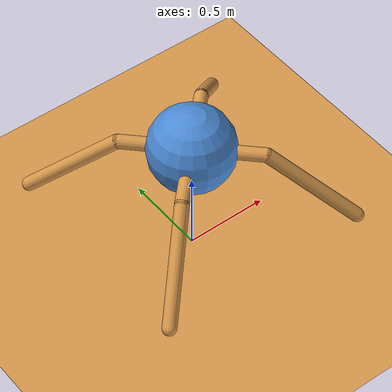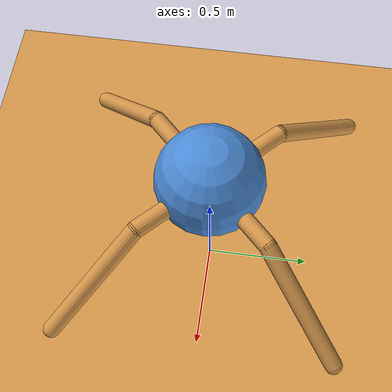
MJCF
<!-- MuJoCo Lab model, written for this site (stella-nova/pages/mujoco-lab). -->
<!-- A four-legged walker of the "ant" kind: a ball body, a hip yaw and a
     knee pitch on each leg, and eight motors. -->
<mujoco model="quadruped">
  <option timestep="0.005" integrator="implicitfast"/>
  <visual><global azimuth="120" elevation="-25"/></visual>
  <default>
    <joint limited="true" damping="1" armature=".01"/>
    <geom type="capsule" size=".04" friction="1 .5 .5" density="5" rgba=".85 .6 .3 1"/>
    <motor ctrlrange="-1 1" gear="15"/>
  </default>
  <asset>
    <texture name="grid" type="2d" builtin="checker" rgb1=".18 .2 .24" rgb2=".24 .27 .31" width="64" height="64"/>
    <material name="grid" texture="grid" texrepeat="10 10" texuniform="true"/>
  </asset>
  <worldbody>
    <light pos="0 0 4" dir="0 0 -1" directional="true"/>
    <geom name="floor" type="plane" size="10 10 .1" material="grid" condim="3"/>
    <body name="torso" pos="0 0 .75">
      <freejoint/>
      <geom name="torso" type="sphere" size=".25" rgba=".3 .55 .85 1"/>
      <body name="leg 1" euler="0 0 45">
        <joint name="hip 1" type="hinge" axis="0 0 1" range="-30 30"/>
        <geom fromto="0 0 0 .4 0 0"/>
        <body pos=".4 0 0"><joint name="knee 1" type="hinge" axis="0 1 0" range="-5 60"/><geom fromto="0 0 0 .5 0 -.4"/></body>
      </body>
      <body name="leg 2" euler="0 0 135">
        <joint name="hip 2" type="hinge" axis="0 0 1" range="-30 30"/>
        <geom fromto="0 0 0 .4 0 0"/>
        <body pos=".4 0 0"><joint name="knee 2" type="hinge" axis="0 1 0" range="-5 60"/><geom fromto="0 0 0 .5 0 -.4"/></body>
      </body>
      <body name="leg 3" euler="0 0 225">
        <joint name="hip 3" type="hinge" axis="0 0 1" range="-30 30"/>
        <geom fromto="0 0 0 .4 0 0"/>
        <body pos=".4 0 0"><joint name="knee 3" type="hinge" axis="0 1 0" range="-5 60"/><geom fromto="0 0 0 .5 0 -.4"/></body>
      </body>
      <body name="leg 4" euler="0 0 315">
        <joint name="hip 4" type="hinge" axis="0 0 1" range="-30 30"/>
        <geom fromto="0 0 0 .4 0 0"/>
        <body pos=".4 0 0"><joint name="knee 4" type="hinge" axis="0 1 0" range="-5 60"/><geom fromto="0 0 0 .5 0 -.4"/></body>
      </body>
    </body>
  </worldbody>
  <actuator>
    <motor name="hip 1" joint="hip 1"/><motor name="knee 1" joint="knee 1"/>
    <motor name="hip 2" joint="hip 2"/><motor name="knee 2" joint="knee 2"/>
    <motor name="hip 3" joint="hip 3"/><motor name="knee 3" joint="knee 3"/>
    <motor name="hip 4" joint="hip 4"/><motor name="knee 4" joint="knee 4"/>
  </actuator>
  <sensor>
    <framepos name="torso position" objtype="body" objname="torso"/>
    <framelinvel name="torso velocity" objtype="body" objname="torso"/>
  </sensor>
</mujoco>
